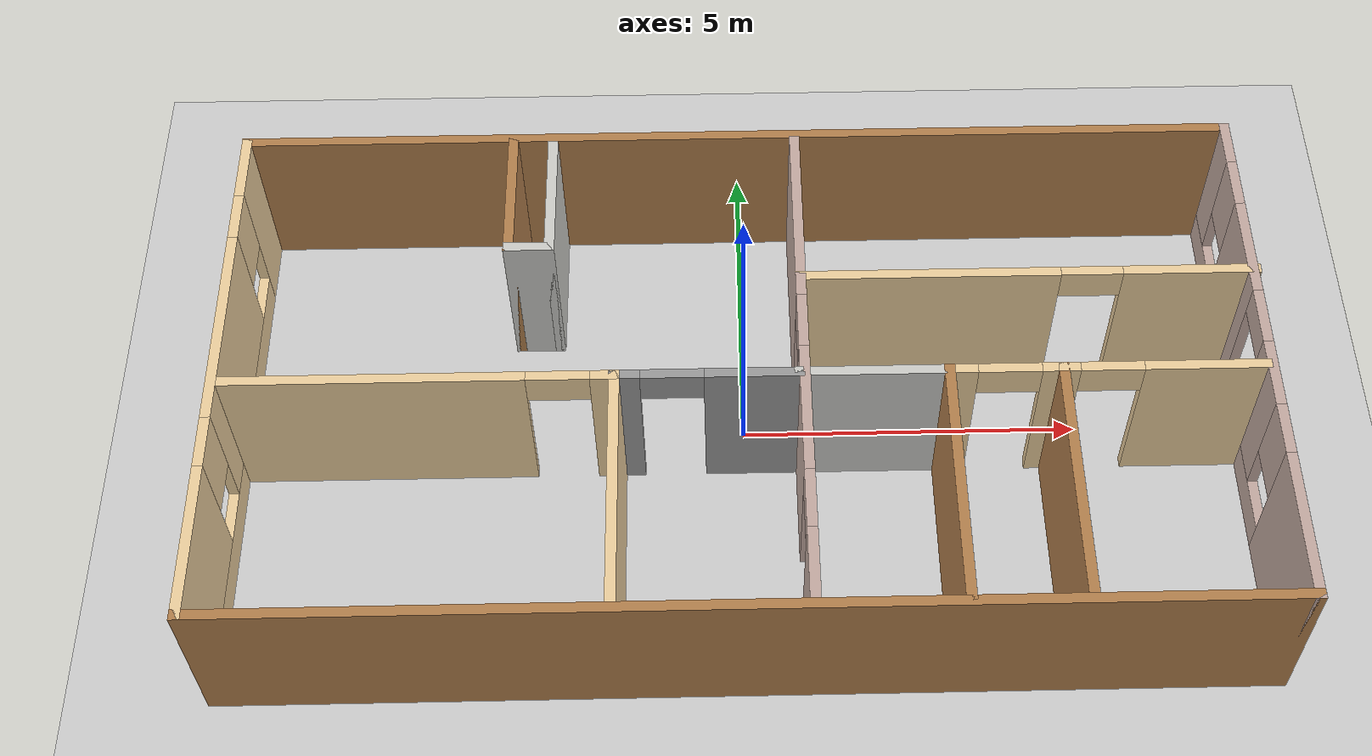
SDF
<sdf version="1.6">
 <world name="default">
  <model name="ground_plane">
   <static>1</static>
   <link name="link">
    <collision name="collision">
     <geometry><plane><normal>0 0 1</normal><size>100 100</size></plane></geometry>
     <surface>
      <contact><collide_bitmask>65535</collide_bitmask></contact>
      <friction><ode><mu>100</mu><mu2>50</mu2></ode></friction>
     </surface>
    </collision>
    <visual name="visual">
     <cast_shadows>0</cast_shadows>
     <geometry><plane><normal>0 0 1</normal><size>100 100</size></plane></geometry>
     <material>
      <script><uri>file://media/materials/scripts/gazebo.material</uri><name>Gazebo/Grey</name></script>
     </material>
    </visual>
   </link>
  </model>
  <model name="Building">
   <pose>0 -0.223279 0 0 -0 0</pose>
   <link name="Wall_10">
    <pose>-4.62797 -0.372796 0 0 -0 0</pose>
    <visual name="Wall_10_Visual_0">
     <pose>-0.658179 0 1.25 0 -0 0</pose>
     <geometry><box><size>4.43364 0.15 2.5</size></box></geometry>
     <material>
      <script><uri>file://media/materials/scripts/gazebo.material</uri><name>Gazebo/Grey</name></script>
      <ambient>0.921569 0.807843 0.615686 1</ambient>
     </material>
     <meta><layer>0</layer></meta>
    </visual>
    <collision name="Wall_10_Collision_0">
     <geometry><box><size>4.43364 0.15 2.5</size></box></geometry>
     <pose>-0.658179 0 1.25 0 -0 0</pose>
    </collision>
    <visual name="Wall_10_Visual_1">
     <pose>2.66682 0 1.25 0 -0 0</pose>
     <geometry><box><size>0.416358 0.15 2.5</size></box></geometry>
     <material>
      <script><uri>file://media/materials/scripts/gazebo.material</uri><name>Gazebo/Grey</name></script>
      <ambient>0.921569 0.807843 0.615686 1</ambient>
     </material>
     <meta><layer>0</layer></meta>
    </visual>
    <collision name="Wall_10_Collision_1">
     <geometry><box><size>0.416358 0.15 2.5</size></box></geometry>
     <pose>2.66682 0 1.25 0 -0 0</pose>
    </collision>
    <visual name="Wall_10_Visual_2">
     <pose>2.00864 0 2.25 0 -0 0</pose>
     <geometry><box><size>0.9 0.15 0.5</size></box></geometry>
     <material>
      <script><uri>file://media/materials/scripts/gazebo.material</uri><name>Gazebo/Grey</name></script>
      <ambient>0.921569 0.807843 0.615686 1</ambient>
     </material>
     <meta><layer>0</layer></meta>
    </visual>
    <collision name="Wall_10_Collision_2">
     <geometry><box><size>0.9 0.15 0.5</size></box></geometry>
     <pose>2.00864 0 2.25 0 -0 0</pose>
    </collision>
   </link>
   <link name="Wall_11">
    <collision name="Wall_11_Collision">
     <geometry><box><size>3.75 0.15 2.5</size></box></geometry>
     <pose>0 0 1.25 0 -0 0</pose>
    </collision>
    <visual name="Wall_11_Visual">
     <pose>0 0 1.25 0 -0 0</pose>
     <geometry><box><size>3.75 0.15 2.5</size></box></geometry>
     <material>
      <script><uri>file://media/materials/scripts/gazebo.material</uri><name>Gazebo/Grey</name></script>
      <ambient>0.921569 0.807843 0.615686 1</ambient>
     </material>
     <meta><layer>0</layer></meta>
    </visual>
    <pose>-1.82797 -2.1728 0 0 0 -1.5708</pose>
   </link>
   <link name="Wall_13">
    <collision name="Wall_13_Collision">
     <geometry><box><size>15 0.15 2.5</size></box></geometry>
     <pose>0 0 1.25 0 -0 0</pose>
    </collision>
    <visual name="Wall_13_Visual">
     <pose>0 0 1.25 0 -0 0</pose>
     <geometry><box><size>15 0.15 2.5</size></box></geometry>
     <material>
      <script><uri>file://media/materials/scripts/gazebo.material</uri><name>Gazebo/Wood</name></script>
      <ambient>1 1 1 1</ambient>
     </material>
     <meta><layer>0</layer></meta>
    </visual>
    <pose>-0.019546 4.05 0 0 -0 0</pose>
   </link>
   <link name="Wall_17">
    <pose>0.844548 -0.003816 0 0 0 -1.5708</pose>
    <visual name="Wall_17_Visual_0">
     <pose>-2.48974 0 1.25 0 -0 0</pose>
     <geometry><box><size>3.02052 0.15 2.5</size></box></geometry>
     <material>
      <script><uri>file://media/materials/scripts/gazebo.material</uri><name>Gazebo/Grey</name></script>
      <ambient>0.760784 0.662745 0.627451 1</ambient>
     </material>
     <meta><layer>0</layer></meta>
    </visual>
    <collision name="Wall_17_Collision_0">
     <geometry><box><size>3.02052 0.15 2.5</size></box></geometry>
     <pose>-2.48974 0 1.25 0 -0 0</pose>
    </collision>
    <visual name="Wall_17_Visual_1">
     <pose>0.954141 0 1.25 0 -0 0</pose>
     <geometry><box><size>2.06725 0.15 2.5</size></box></geometry>
     <material>
      <script><uri>file://media/materials/scripts/gazebo.material</uri><name>Gazebo/Grey</name></script>
      <ambient>0.760784 0.662745 0.627451 1</ambient>
     </material>
     <meta><layer>0</layer></meta>
    </visual>
    <collision name="Wall_17_Collision_1">
     <geometry><box><size>2.06725 0.15 2.5</size></box></geometry>
     <pose>0.954141 0 1.25 0 -0 0</pose>
    </collision>
    <visual name="Wall_17_Visual_2">
     <pose>3.44388 0 1.25 0 -0 0</pose>
     <geometry><box><size>1.11223 0.15 2.5</size></box></geometry>
     <material>
      <script><uri>file://media/materials/scripts/gazebo.material</uri><name>Gazebo/Grey</name></script>
      <ambient>0.760784 0.662745 0.627451 1</ambient>
     </material>
     <meta><layer>0</layer></meta>
    </visual>
    <collision name="Wall_17_Collision_2">
     <geometry><box><size>1.11223 0.15 2.5</size></box></geometry>
     <pose>3.44388 0 1.25 0 -0 0</pose>
    </collision>
    <visual name="Wall_17_Visual_3">
     <pose>-0.529485 0 2.25 0 -0 0</pose>
     <geometry><box><size>0.9 0.15 0.5</size></box></geometry>
     <material>
      <script><uri>file://media/materials/scripts/gazebo.material</uri><name>Gazebo/Grey</name></script>
      <ambient>0.760784 0.662745 0.627451 1</ambient>
     </material>
     <meta><layer>0</layer></meta>
    </visual>
    <collision name="Wall_17_Collision_3">
     <geometry><box><size>0.9 0.15 0.5</size></box></geometry>
     <pose>-0.529485 0 2.25 0 -0 0</pose>
    </collision>
    <visual name="Wall_17_Visual_4">
     <pose>2.43777 0 2.25 0 -0 0</pose>
     <geometry><box><size>0.9 0.15 0.5</size></box></geometry>
     <material>
      <script><uri>file://media/materials/scripts/gazebo.material</uri><name>Gazebo/Grey</name></script>
      <ambient>0.760784 0.662745 0.627451 1</ambient>
     </material>
     <meta><layer>0</layer></meta>
    </visual>
    <collision name="Wall_17_Collision_4">
     <geometry><box><size>0.9 0.15 0.5</size></box></geometry>
     <pose>2.43777 0 2.25 0 -0 0</pose>
    </collision>
   </link>
   <link name="Wall_19">
    <pose>-0.52797 -0.372796 0 0 -0 0</pose>
    <visual name="Wall_19_Visual_0">
     <pose>-1.15924 0 1.25 0 -0 0</pose>
     <geometry><box><size>0.431514 0.15 2.5</size></box></geometry>
     <material>
      <script><uri>file://media/materials/scripts/gazebo.material</uri><name>Gazebo/Grey</name></script>
      <ambient>1 1 1 1</ambient>
     </material>
     <meta><layer>0</layer></meta>
    </visual>
    <collision name="Wall_19_Collision_0">
     <geometry><box><size>0.431514 0.15 2.5</size></box></geometry>
     <pose>-1.15924 0 1.25 0 -0 0</pose>
    </collision>
    <visual name="Wall_19_Visual_1">
     <pose>0.665757 0 1.25 0 -0 0</pose>
     <geometry><box><size>1.41849 0.15 2.5</size></box></geometry>
     <material>
      <script><uri>file://media/materials/scripts/gazebo.material</uri><name>Gazebo/Grey</name></script>
      <ambient>1 1 1 1</ambient>
     </material>
     <meta><layer>0</layer></meta>
    </visual>
    <collision name="Wall_19_Collision_1">
     <geometry><box><size>1.41849 0.15 2.5</size></box></geometry>
     <pose>0.665757 0 1.25 0 -0 0</pose>
    </collision>
    <visual name="Wall_19_Visual_2">
     <pose>-0.493486 0 2.25 0 -0 0</pose>
     <geometry><box><size>0.9 0.15 0.5</size></box></geometry>
     <material>
      <script><uri>file://media/materials/scripts/gazebo.material</uri><name>Gazebo/Grey</name></script>
      <ambient>1 1 1 1</ambient>
     </material>
     <meta><layer>0</layer></meta>
    </visual>
    <collision name="Wall_19_Collision_2">
     <geometry><box><size>0.9 0.15 0.5</size></box></geometry>
     <pose>-0.493486 0 2.25 0 -0 0</pose>
    </collision>
   </link>
   <link name="Wall_23">
    <collision name="Wall_23_Collision">
     <geometry><box><size>2.25 0.15 2.5</size></box></geometry>
     <pose>0 0 1.25 0 -0 0</pose>
    </collision>
    <visual name="Wall_23_Visual">
     <pose>0 0 1.25 0 -0 0</pose>
     <geometry><box><size>2.25 0.15 2.5</size></box></geometry>
     <material>
      <script><uri>file://media/materials/scripts/gazebo.material</uri><name>Gazebo/Wood</name></script>
      <ambient>1 1 1 1</ambient>
     </material>
     <meta><layer>0</layer></meta>
    </visual>
    <pose>-3.40749 2.99355 0 0 0 -1.5708</pose>
   </link>
   <link name="Wall_24">
    <collision name="Wall_24_Collision">
     <geometry><box><size>0.75 0.15 2.5</size></box></geometry>
     <pose>0 0 1.25 0 -0 0</pose>
    </collision>
    <visual name="Wall_24_Visual">
     <pose>0 0 1.25 0 -0 0</pose>
     <geometry><box><size>0.75 0.15 2.5</size></box></geometry>
     <material>
      <script><uri>file://media/materials/scripts/gazebo.material</uri><name>Gazebo/CeilingTiled</name></script>
      <ambient>1 1 1 1</ambient>
     </material>
     <meta><layer>0</layer></meta>
    </visual>
    <pose>-3.10749 1.94355 0 0 -0 0</pose>
   </link>
   <link name="Wall_27">
    <collision name="Wall_27_Collision">
     <geometry><box><size>2.25 0.15 2.5</size></box></geometry>
     <pose>0 0 1.25 0 -0 0</pose>
    </collision>
    <visual name="Wall_27_Visual">
     <pose>0 0 1.25 0 -0 0</pose>
     <geometry><box><size>2.25 0.15 2.5</size></box></geometry>
     <material>
      <script><uri>file://media/materials/scripts/gazebo.material</uri><name>Gazebo/CeilingTiled</name></script>
      <ambient>1 1 1 1</ambient>
     </material>
     <meta><layer>0</layer></meta>
    </visual>
    <pose>-2.80749 2.99355 0 0 -0 1.5708</pose>
   </link>
   <link name="Wall_3">
    <pose>-7.44455 0 0 0 0 -1.5708</pose>
    <visual name="Wall_3_Visual_0">
     <pose>-3.5654 0 1.25 0 -0 0</pose>
     <geometry><box><size>1.1192 0.15 2.5</size></box></geometry>
     <material>
      <script><uri>file://media/materials/scripts/gazebo.material</uri><name>Gazebo/Grey</name></script>
      <ambient>0.921569 0.807843 0.615686 1</ambient>
     </material>
     <meta><layer>0</layer></meta>
    </visual>
    <collision name="Wall_3_Collision_0">
     <geometry><box><size>1.1192 0.15 2.5</size></box></geometry>
     <pose>-3.5654 0 1.25 0 -0 0</pose>
    </collision>
    <visual name="Wall_3_Visual_1">
     <pose>0.559598 0 0.25 0 -0 0</pose>
     <geometry><box><size>7.1308 0.15 0.5</size></box></geometry>
     <material>
      <script><uri>file://media/materials/scripts/gazebo.material</uri><name>Gazebo/Grey</name></script>
      <ambient>0.921569 0.807843 0.615686 1</ambient>
     </material>
     <meta><layer>0</layer></meta>
    </visual>
    <collision name="Wall_3_Collision_1">
     <geometry><box><size>7.1308 0.15 0.5</size></box></geometry>
     <pose>0.559598 0 0.25 0 -0 0</pose>
    </collision>
    <visual name="Wall_3_Visual_2">
     <pose>-0.61744 0 1.5 0 -0 0</pose>
     <geometry><box><size>3.17673 0.15 2</size></box></geometry>
     <material>
      <script><uri>file://media/materials/scripts/gazebo.material</uri><name>Gazebo/Grey</name></script>
      <ambient>0.921569 0.807843 0.615686 1</ambient>
     </material>
     <meta><layer>0</layer></meta>
    </visual>
    <collision name="Wall_3_Collision_2">
     <geometry><box><size>3.17673 0.15 2</size></box></geometry>
     <pose>-0.61744 0 1.5 0 -0 0</pose>
    </collision>
    <visual name="Wall_3_Visual_3">
     <pose>2.94796 0 1.5 0 -0 0</pose>
     <geometry><box><size>2.35407 0.15 2</size></box></geometry>
     <material>
      <script><uri>file://media/materials/scripts/gazebo.material</uri><name>Gazebo/Grey</name></script>
      <ambient>0.921569 0.807843 0.615686 1</ambient>
     </material>
     <meta><layer>0</layer></meta>
    </visual>
    <collision name="Wall_3_Collision_3">
     <geometry><box><size>2.35407 0.15 2</size></box></geometry>
     <pose>2.94796 0 1.5 0 -0 0</pose>
    </collision>
    <visual name="Wall_3_Visual_4">
     <pose>-2.6058 0 1.9 0 -0 0</pose>
     <geometry><box><size>0.8 0.15 1.2</size></box></geometry>
     <material>
      <script><uri>file://media/materials/scripts/gazebo.material</uri><name>Gazebo/Grey</name></script>
      <ambient>0.921569 0.807843 0.615686 1</ambient>
     </material>
     <meta><layer>0</layer></meta>
    </visual>
    <collision name="Wall_3_Collision_4">
     <geometry><box><size>0.8 0.15 1.2</size></box></geometry>
     <pose>-2.6058 0 1.9 0 -0 0</pose>
    </collision>
    <visual name="Wall_3_Visual_5">
     <pose>1.37092 0 1.9 0 -0 0</pose>
     <geometry><box><size>0.8 0.15 1.2</size></box></geometry>
     <material>
      <script><uri>file://media/materials/scripts/gazebo.material</uri><name>Gazebo/Grey</name></script>
      <ambient>0.921569 0.807843 0.615686 1</ambient>
     </material>
     <meta><layer>0</layer></meta>
    </visual>
    <collision name="Wall_3_Collision_5">
     <geometry><box><size>0.8 0.15 1.2</size></box></geometry>
     <pose>1.37092 0 1.9 0 -0 0</pose>
    </collision>
   </link>
   <link name="Wall_31">
    <pose>4.14455 1.32102 0 0 -0 0</pose>
    <visual name="Wall_31_Visual_0">
     <pose>-1.45177 0 1.25 0 -0 0</pose>
     <geometry><box><size>3.84645 0.15 2.5</size></box></geometry>
     <material>
      <script><uri>file://media/materials/scripts/gazebo.material</uri><name>Gazebo/Grey</name></script>
      <ambient>0.921569 0.807843 0.615686 1</ambient>
     </material>
     <meta><layer>0</layer></meta>
    </visual>
    <collision name="Wall_31_Collision_0">
     <geometry><box><size>3.84645 0.15 2.5</size></box></geometry>
     <pose>-1.45177 0 1.25 0 -0 0</pose>
    </collision>
    <visual name="Wall_31_Visual_1">
     <pose>2.37323 0 1.25 0 -0 0</pose>
     <geometry><box><size>2.00355 0.15 2.5</size></box></geometry>
     <material>
      <script><uri>file://media/materials/scripts/gazebo.material</uri><name>Gazebo/Grey</name></script>
      <ambient>0.921569 0.807843 0.615686 1</ambient>
     </material>
     <meta><layer>0</layer></meta>
    </visual>
    <collision name="Wall_31_Collision_1">
     <geometry><box><size>2.00355 0.15 2.5</size></box></geometry>
     <pose>2.37323 0 1.25 0 -0 0</pose>
    </collision>
    <visual name="Wall_31_Visual_2">
     <pose>0.921452 0 2.25 0 -0 0</pose>
     <geometry><box><size>0.9 0.15 0.5</size></box></geometry>
     <material>
      <script><uri>file://media/materials/scripts/gazebo.material</uri><name>Gazebo/Grey</name></script>
      <ambient>0.921569 0.807843 0.615686 1</ambient>
     </material>
     <meta><layer>0</layer></meta>
    </visual>
    <collision name="Wall_31_Collision_2">
     <geometry><box><size>0.9 0.15 0.5</size></box></geometry>
     <pose>0.921452 0 2.25 0 -0 0</pose>
    </collision>
   </link>
   <link name="Wall_33">
    <collision name="Wall_33_Collision">
     <geometry><box><size>2.25 0.15 2.5</size></box></geometry>
     <pose>0 0 1.25 0 -0 0</pose>
    </collision>
    <visual name="Wall_33_Visual">
     <pose>0 0 1.25 0 -0 0</pose>
     <geometry><box><size>2.25 0.15 2.5</size></box></geometry>
     <material>
      <script><uri>file://media/materials/scripts/gazebo.material</uri><name>Gazebo/CeilingTiled</name></script>
      <ambient>1 1 1 1</ambient>
     </material>
     <meta><layer>0</layer></meta>
    </visual>
    <pose>1.82203 -0.372796 0 0 -0 0</pose>
   </link>
   <link name="Wall_34">
    <collision name="Wall_34_Collision">
     <geometry><box><size>3.75 0.15 2.5</size></box></geometry>
     <pose>0 0 1.25 0 -0 0</pose>
    </collision>
    <visual name="Wall_34_Visual">
     <pose>0 0 1.25 0 -0 0</pose>
     <geometry><box><size>3.75 0.15 2.5</size></box></geometry>
     <material>
      <script><uri>file://media/materials/scripts/gazebo.material</uri><name>Gazebo/Wood</name></script>
      <ambient>1 1 1 1</ambient>
     </material>
     <meta><layer>0</layer></meta>
    </visual>
    <pose>2.87203 -2.1728 0 0 0 -1.5708</pose>
   </link>
   <link name="Wall_36">
    <pose>3.67203 -0.372796 0 0 -0 0</pose>
    <visual name="Wall_36_Visual_0">
     <pose>-0.6385 0 1.25 0 -0 0</pose>
     <geometry><box><size>0.472999 0.15 2.5</size></box></geometry>
     <material>
      <script><uri>file://media/materials/scripts/gazebo.material</uri><name>Gazebo/Grey</name></script>
      <ambient>0.921569 0.807843 0.615686 1</ambient>
     </material>
     <meta><layer>0</layer></meta>
    </visual>
    <collision name="Wall_36_Collision_0">
     <geometry><box><size>0.472999 0.15 2.5</size></box></geometry>
     <pose>-0.6385 0 1.25 0 -0 0</pose>
    </collision>
    <visual name="Wall_36_Visual_1">
     <pose>0.6865 0 1.25 0 -0 0</pose>
     <geometry><box><size>0.377001 0.15 2.5</size></box></geometry>
     <material>
      <script><uri>file://media/materials/scripts/gazebo.material</uri><name>Gazebo/Grey</name></script>
      <ambient>0.921569 0.807843 0.615686 1</ambient>
     </material>
     <meta><layer>0</layer></meta>
    </visual>
    <collision name="Wall_36_Collision_1">
     <geometry><box><size>0.377001 0.15 2.5</size></box></geometry>
     <pose>0.6865 0 1.25 0 -0 0</pose>
    </collision>
    <visual name="Wall_36_Visual_2">
     <pose>0.047999 0 2.25 0 -0 0</pose>
     <geometry><box><size>0.9 0.15 0.5</size></box></geometry>
     <material>
      <script><uri>file://media/materials/scripts/gazebo.material</uri><name>Gazebo/Grey</name></script>
      <ambient>0.921569 0.807843 0.615686 1</ambient>
     </material>
     <meta><layer>0</layer></meta>
    </visual>
    <collision name="Wall_36_Collision_2">
     <geometry><box><size>0.9 0.15 0.5</size></box></geometry>
     <pose>0.047999 0 2.25 0 -0 0</pose>
    </collision>
   </link>
   <link name="Wall_37">
    <collision name="Wall_37_Collision">
     <geometry><box><size>3.75 0.15 2.5</size></box></geometry>
     <pose>0 0 1.25 0 -0 0</pose>
    </collision>
    <visual name="Wall_37_Visual">
     <pose>0 0 1.25 0 -0 0</pose>
     <geometry><box><size>3.75 0.15 2.5</size></box></geometry>
     <material>
      <script><uri>file://media/materials/scripts/gazebo.material</uri><name>Gazebo/Wood</name></script>
      <ambient>1 1 1 1</ambient>
     </material>
     <meta><layer>0</layer></meta>
    </visual>
    <pose>4.47203 -2.1728 0 0 0 -1.5708</pose>
   </link>
   <link name="Wall_39">
    <pose>5.89703 -0.372796 0 0 -0 0</pose>
    <visual name="Wall_39_Visual_0">
     <pose>-1.34463 0 1.25 0 -0 0</pose>
     <geometry><box><size>0.31074 0.15 2.5</size></box></geometry>
     <material>
      <script><uri>file://media/materials/scripts/gazebo.material</uri><name>Gazebo/Grey</name></script>
      <ambient>0.921569 0.807843 0.615686 1</ambient>
     </material>
     <meta><layer>0</layer></meta>
    </visual>
    <collision name="Wall_39_Collision_0">
     <geometry><box><size>0.31074 0.15 2.5</size></box></geometry>
     <pose>-1.34463 0 1.25 0 -0 0</pose>
    </collision>
    <visual name="Wall_39_Visual_1">
     <pose>0.60537 0 1.25 0 -0 0</pose>
     <geometry><box><size>1.78926 0.15 2.5</size></box></geometry>
     <material>
      <script><uri>file://media/materials/scripts/gazebo.material</uri><name>Gazebo/Grey</name></script>
      <ambient>0.921569 0.807843 0.615686 1</ambient>
     </material>
     <meta><layer>0</layer></meta>
    </visual>
    <collision name="Wall_39_Collision_1">
     <geometry><box><size>1.78926 0.15 2.5</size></box></geometry>
     <pose>0.60537 0 1.25 0 -0 0</pose>
    </collision>
    <visual name="Wall_39_Visual_2">
     <pose>-0.73926 0 2.25 0 -0 0</pose>
     <geometry><box><size>0.9 0.15 0.5</size></box></geometry>
     <material>
      <script><uri>file://media/materials/scripts/gazebo.material</uri><name>Gazebo/Grey</name></script>
      <ambient>0.921569 0.807843 0.615686 1</ambient>
     </material>
     <meta><layer>0</layer></meta>
    </visual>
    <collision name="Wall_39_Collision_2">
     <geometry><box><size>0.9 0.15 0.5</size></box></geometry>
     <pose>-0.73926 0 2.25 0 -0 0</pose>
    </collision>
   </link>
   <link name="Wall_4">
    <collision name="Wall_4_Collision">
     <geometry><box><size>15 0.15 2.5</size></box></geometry>
     <pose>0 0 1.25 0 -0 0</pose>
    </collision>
    <visual name="Wall_4_Visual">
     <pose>0 0 1.25 0 -0 0</pose>
     <geometry><box><size>15 0.15 2.5</size></box></geometry>
     <material>
      <script><uri>file://media/materials/scripts/gazebo.material</uri><name>Gazebo/Wood</name></script>
      <ambient>1 1 1 1</ambient>
     </material>
     <meta><layer>0</layer></meta>
    </visual>
    <pose>-0.019546 -4.05 0 0 -0 0</pose>
   </link>
   <link name="Wall_5">
    <pose>7.40545 0 0 0 -0 1.5708</pose>
    <visual name="Wall_5_Visual_0">
     <pose>-2.99385 0 1.25 0 -0 0</pose>
     <geometry><box><size>2.2623 0.15 2.5</size></box></geometry>
     <material>
      <script><uri>file://media/materials/scripts/gazebo.material</uri><name>Gazebo/Grey</name></script>
      <ambient>0.760784 0.662745 0.627451 1</ambient>
     </material>
     <meta><layer>0</layer></meta>
    </visual>
    <collision name="Wall_5_Collision_0">
     <geometry><box><size>2.2623 0.15 2.5</size></box></geometry>
     <pose>-2.99385 0 1.25 0 -0 0</pose>
    </collision>
    <visual name="Wall_5_Visual_1">
     <pose>1.72839 0 1.25 0 -0 0</pose>
     <geometry><box><size>1.62781 0.15 2.5</size></box></geometry>
     <material>
      <script><uri>file://media/materials/scripts/gazebo.material</uri><name>Gazebo/Grey</name></script>
      <ambient>0.760784 0.662745 0.627451 1</ambient>
     </material>
     <meta><layer>0</layer></meta>
    </visual>
    <collision name="Wall_5_Collision_1">
     <geometry><box><size>1.62781 0.15 2.5</size></box></geometry>
     <pose>1.72839 0 1.25 0 -0 0</pose>
    </collision>
    <visual name="Wall_5_Visual_2">
     <pose>-0.924104 0 0.25 0 -0 0</pose>
     <geometry><box><size>1.87718 0.15 0.5</size></box></geometry>
     <material>
      <script><uri>file://media/materials/scripts/gazebo.material</uri><name>Gazebo/Grey</name></script>
      <ambient>0.760784 0.662745 0.627451 1</ambient>
     </material>
     <meta><layer>0</layer></meta>
    </visual>
    <collision name="Wall_5_Collision_2">
     <geometry><box><size>1.87718 0.15 0.5</size></box></geometry>
     <pose>-0.924104 0 0.25 0 -0 0</pose>
    </collision>
    <visual name="Wall_5_Visual_3">
     <pose>3.33365 0 0.25 0 -0 0</pose>
     <geometry><box><size>1.5827 0.15 0.5</size></box></geometry>
     <material>
      <script><uri>file://media/materials/scripts/gazebo.material</uri><name>Gazebo/Grey</name></script>
      <ambient>0.760784 0.662745 0.627451 1</ambient>
     </material>
     <meta><layer>0</layer></meta>
    </visual>
    <collision name="Wall_5_Collision_3">
     <geometry><box><size>1.5827 0.15 0.5</size></box></geometry>
     <pose>3.33365 0 0.25 0 -0 0</pose>
    </collision>
    <visual name="Wall_5_Visual_4">
     <pose>-0.524104 0 1.5 0 -0 0</pose>
     <geometry><box><size>1.07718 0.15 2</size></box></geometry>
     <material>
      <script><uri>file://media/materials/scripts/gazebo.material</uri><name>Gazebo/Grey</name></script>
      <ambient>0.760784 0.662745 0.627451 1</ambient>
     </material>
     <meta><layer>0</layer></meta>
    </visual>
    <collision name="Wall_5_Collision_4">
     <geometry><box><size>1.07718 0.15 2</size></box></geometry>
     <pose>-0.524104 0 1.5 0 -0 0</pose>
    </collision>
    <visual name="Wall_5_Visual_5">
     <pose>-0.524104 0 1.5 0 -0 0</pose>
     <geometry><box><size>1.07718 0.15 2</size></box></geometry>
     <material>
      <script><uri>file://media/materials/scripts/gazebo.material</uri><name>Gazebo/Grey</name></script>
      <ambient>0.760784 0.662745 0.627451 1</ambient>
     </material>
     <meta><layer>0</layer></meta>
    </visual>
    <collision name="Wall_5_Collision_5">
     <geometry><box><size>1.07718 0.15 2</size></box></geometry>
     <pose>-0.524104 0 1.5 0 -0 0</pose>
    </collision>
    <visual name="Wall_5_Visual_6">
     <pose>3.73365 0 1.5 0 -0 0</pose>
     <geometry><box><size>0.782703 0.15 2</size></box></geometry>
     <material>
      <script><uri>file://media/materials/scripts/gazebo.material</uri><name>Gazebo/Grey</name></script>
      <ambient>0.760784 0.662745 0.627451 1</ambient>
     </material>
     <meta><layer>0</layer></meta>
    </visual>
    <collision name="Wall_5_Collision_6">
     <geometry><box><size>0.782703 0.15 2</size></box></geometry>
     <pose>3.73365 0 1.5 0 -0 0</pose>
    </collision>
    <visual name="Wall_5_Visual_7">
     <pose>-1.4627 0 1.9 0 -0 0</pose>
     <geometry><box><size>0.8 0.15 1.2</size></box></geometry>
     <material>
      <script><uri>file://media/materials/scripts/gazebo.material</uri><name>Gazebo/Grey</name></script>
      <ambient>0.760784 0.662745 0.627451 1</ambient>
     </material>
     <meta><layer>0</layer></meta>
    </visual>
    <collision name="Wall_5_Collision_7">
     <geometry><box><size>0.8 0.15 1.2</size></box></geometry>
     <pose>-1.4627 0 1.9 0 -0 0</pose>
    </collision>
    <visual name="Wall_5_Visual_8">
     <pose>2.9423 0 1.9 0 -0 0</pose>
     <geometry><box><size>0.8 0.15 1.2</size></box></geometry>
     <material>
      <script><uri>file://media/materials/scripts/gazebo.material</uri><name>Gazebo/Grey</name></script>
      <ambient>0.760784 0.662745 0.627451 1</ambient>
     </material>
     <meta><layer>0</layer></meta>
    </visual>
    <collision name="Wall_5_Collision_8">
     <geometry><box><size>0.8 0.15 1.2</size></box></geometry>
     <pose>2.9423 0 1.9 0 -0 0</pose>
    </collision>
    <visual name="Wall_5_Visual_9">
     <pose>0.464488 0 2.25 0 -0 0</pose>
     <geometry><box><size>0.9 0.15 0.5</size></box></geometry>
     <material>
      <script><uri>file://media/materials/scripts/gazebo.material</uri><name>Gazebo/Grey</name></script>
      <ambient>0.760784 0.662745 0.627451 1</ambient>
     </material>
     <meta><layer>0</layer></meta>
    </visual>
    <collision name="Wall_5_Collision_9">
     <geometry><box><size>0.9 0.15 0.5</size></box></geometry>
     <pose>0.464488 0 2.25 0 -0 0</pose>
    </collision>
    <visual name="Wall_5_Visual_10">
     <pose>0.464488 0 2.25 0 -0 0</pose>
     <geometry><box><size>0.9 0.15 0.5</size></box></geometry>
     <material>
      <script><uri>file://media/materials/scripts/gazebo.material</uri><name>Gazebo/Grey</name></script>
      <ambient>0.760784 0.662745 0.627451 1</ambient>
     </material>
     <meta><layer>0</layer></meta>
    </visual>
    <collision name="Wall_5_Collision_10">
     <geometry><box><size>0.9 0.15 0.5</size></box></geometry>
     <pose>0.464488 0 2.25 0 -0 0</pose>
    </collision>
   </link>
   <static>1</static>
  </model>
  <model name="Rover_0">
   <link name="link_0">
    <pose>0.008 0 0 0 -0 0</pose>
    <inertial>
     <mass>1</mass>
     <inertia>
      <ixx>0.166667</ixx>
      <ixy>0</ixy>
      <ixz>0</ixz>
      <iyy>0.166667</iyy>
      <iyz>0</iyz>
      <izz>0.166667</izz>
     </inertia>
    </inertial>
    <visual name="visual">
     <geometry><box><size>0.6 0.4 0.1</size></box></geometry>
     <material>
      <lighting>1</lighting>
      <script><uri>file://media/materials/scripts/gazebo.material</uri><name>Gazebo/Grey</name></script>
      <shader type="pixel"><normal_map>__default__</normal_map></shader>
      <ambient>0.3 0.3 0.3 1</ambient>
      <diffuse>0.7 0.7 0.7 1</diffuse>
      <specular>0.01 0.01 0.01 1</specular>
      <emissive>0 0 0 1</emissive>
     </material>
    </visual>
    <collision name="collision">
     <geometry><box><size>0.6 0.4 0.1</size></box></geometry>
     <surface>
      <friction>
       <ode><mu>1</mu><mu2>1</mu2><fdir1>0 0 0</fdir1><slip1>0</slip1><slip2>0</slip2></ode>
       <torsional>
        <coefficient>1</coefficient>
        <patch_radius>0</patch_radius>
        <surface_radius>0</surface_radius>
        <use_patch_radius>1</use_patch_radius>
        <ode><slip>0</slip></ode>
       </torsional>
      </friction>
      <bounce><restitution_coefficient>0</restitution_coefficient><threshold>1e+06</threshold></bounce>
      <contact>
       <collide_without_contact>0</collide_without_contact>
       <collide_without_contact_bitmask>1</collide_without_contact_bitmask>
       <collide_bitmask>1</collide_bitmask>
       <ode>
        <soft_cfm>0</soft_cfm>
        <soft_erp>0.2</soft_erp>
        <kp>1e+13</kp>
        <kd>1</kd>
        <max_vel>0.01</max_vel>
        <min_depth>0</min_depth>
       </ode>
       <bullet>
        <split_impulse>1</split_impulse>
        <split_impulse_penetration_threshold>-0.01</split_impulse_penetration_threshold>
        <soft_cfm>0</soft_cfm>
        <soft_erp>0.2</soft_erp>
        <kp>1e+13</kp>
        <kd>1</kd>
       </bullet>
      </contact>
     </surface>
    </collision>
   </link>
   <link name="link_1">
    <pose>0.168 -0.225 0 1.5708 -0 0</pose>
    <inertial>
     <mass>1</mass>
     <inertia><ixx>0.145833</ixx><ixy>0</ixy><ixz>0</ixz><iyy>0.145833</iyy><iyz>0</iyz><izz>0.125</izz></inertia>
    </inertial>
    <visual name="visual">
     <geometry><cylinder><radius>0.1</radius><length>0.05</length></cylinder></geometry>
     <material>
      <lighting>1</lighting>
      <script><uri>file://media/materials/scripts/gazebo.material</uri><name>Gazebo/Grey</name></script>
      <shader type="pixel"><normal_map>__default__</normal_map></shader>
      <ambient>0.3 0.3 0.3 1</ambient>
      <diffuse>0.7 0.7 0.7 1</diffuse>
      <specular>0.01 0.01 0.01 1</specular>
      <emissive>0 0 0 1</emissive>
     </material>
    </visual>
    <collision name="collision">
     <geometry><cylinder><radius>0.1</radius><length>0.05</length></cylinder></geometry>
     <surface>
      <friction>
       <ode><mu>1</mu><mu2>1</mu2><fdir1>0 0 0</fdir1><slip1>0</slip1><slip2>0</slip2></ode>
       <torsional>
        <coefficient>1</coefficient>
        <patch_radius>0</patch_radius>
        <surface_radius>0</surface_radius>
        <use_patch_radius>1</use_patch_radius>
        <ode><slip>0</slip></ode>
       </torsional>
      </friction>
      <bounce><restitution_coefficient>0</restitution_coefficient><threshold>1e+06</threshold></bounce>
      <contact>
       <collide_without_contact>0</collide_without_contact>
       <collide_without_contact_bitmask>1</collide_without_contact_bitmask>
       <collide_bitmask>1</collide_bitmask>
       <ode>
        <soft_cfm>0</soft_cfm>
        <soft_erp>0.2</soft_erp>
        <kp>1e+13</kp>
        <kd>1</kd>
        <max_vel>0.01</max_vel>
        <min_depth>0</min_depth>
       </ode>
       <bullet>
        <split_impulse>1</split_impulse>
        <split_impulse_penetration_threshold>-0.01</split_impulse_penetration_threshold>
        <soft_cfm>0</soft_cfm>
        <soft_erp>0.2</soft_erp>
        <kp>1e+13</kp>
        <kd>1</kd>
       </bullet>
      </contact>
     </surface>
    </collision>
   </link>
   <link name="link_1_clone">
    <pose>-0.192 -0.225 0 1.5708 -0 0</pose>
    <inertial>
     <mass>1</mass>
     <inertia><ixx>0.145833</ixx><ixy>0</ixy><ixz>0</ixz><iyy>0.145833</iyy><iyz>0</iyz><izz>0.125</izz></inertia>
    </inertial>
    <visual name="visual">
     <geometry><cylinder><radius>0.1</radius><length>0.05</length></cylinder></geometry>
     <material>
      <lighting>1</lighting>
      <script><uri>file://media/materials/scripts/gazebo.material</uri><name>Gazebo/Grey</name></script>
      <shader type="pixel"><normal_map>__default__</normal_map></shader>
      <ambient>0.3 0.3 0.3 1</ambient>
      <diffuse>0.7 0.7 0.7 1</diffuse>
      <specular>0.01 0.01 0.01 1</specular>
      <emissive>0 0 0 1</emissive>
     </material>
    </visual>
    <collision name="collision">
     <geometry><cylinder><radius>0.1</radius><length>0.05</length></cylinder></geometry>
     <surface>
      <friction>
       <ode><mu>1</mu><mu2>1</mu2><fdir1>0 0 0</fdir1><slip1>0</slip1><slip2>0</slip2></ode>
       <torsional>
        <coefficient>1</coefficient>
        <patch_radius>0</patch_radius>
        <surface_radius>0</surface_radius>
        <use_patch_radius>1</use_patch_radius>
        <ode><slip>0</slip></ode>
       </torsional>
      </friction>
      <bounce><restitution_coefficient>0</restitution_coefficient><threshold>1e+06</threshold></bounce>
      <contact>
       <collide_without_contact>0</collide_without_contact>
       <collide_without_contact_bitmask>1</collide_without_contact_bitmask>
       <collide_bitmask>1</collide_bitmask>
       <ode>
        <soft_cfm>0</soft_cfm>
        <soft_erp>0.2</soft_erp>
        <kp>1e+13</kp>
        <kd>1</kd>
        <max_vel>0.01</max_vel>
        <min_depth>0</min_depth>
       </ode>
       <bullet>
        <split_impulse>1</split_impulse>
        <split_impulse_penetration_threshold>-0.01</split_impulse_penetration_threshold>
        <soft_cfm>0</soft_cfm>
        <soft_erp>0.2</soft_erp>
        <kp>1e+13</kp>
        <kd>1</kd>
       </bullet>
      </contact>
     </surface>
    </collision>
   </link>
   <link name="link_1_clone_0">
    <pose>-0.192 0.225 0 1.5708 -0 0</pose>
    <inertial>
     <mass>1</mass>
     <inertia><ixx>0.145833</ixx><ixy>0</ixy><ixz>0</ixz><iyy>0.145833</iyy><iyz>0</iyz><izz>0.125</izz></inertia>
    </inertial>
    <visual name="visual">
     <geometry><cylinder><radius>0.1</radius><length>0.05</length></cylinder></geometry>
     <material>
      <lighting>1</lighting>
      <script><uri>file://media/materials/scripts/gazebo.material</uri><name>Gazebo/Grey</name></script>
      <shader type="pixel"><normal_map>__default__</normal_map></shader>
      <ambient>0.3 0.3 0.3 1</ambient>
      <diffuse>0.7 0.7 0.7 1</diffuse>
      <specular>0.01 0.01 0.01 1</specular>
      <emissive>0 0 0 1</emissive>
     </material>
    </visual>
    <collision name="collision">
     <geometry><cylinder><radius>0.1</radius><length>0.05</length></cylinder></geometry>
     <surface>
      <friction>
       <ode><mu>1</mu><mu2>1</mu2><fdir1>0 0 0</fdir1><slip1>0</slip1><slip2>0</slip2></ode>
       <torsional>
        <coefficient>1</coefficient>
        <patch_radius>0</patch_radius>
        <surface_radius>0</surface_radius>
        <use_patch_radius>1</use_patch_radius>
        <ode><slip>0</slip></ode>
       </torsional>
      </friction>
      <bounce><restitution_coefficient>0</restitution_coefficient><threshold>1e+06</threshold></bounce>
      <contact>
       <collide_without_contact>0</collide_without_contact>
       <collide_without_contact_bitmask>1</collide_without_contact_bitmask>
       <collide_bitmask>1</collide_bitmask>
       <ode>
        <soft_cfm>0</soft_cfm>
        <soft_erp>0.2</soft_erp>
        <kp>1e+13</kp>
        <kd>1</kd>
        <max_vel>0.01</max_vel>
        <min_depth>0</min_depth>
       </ode>
       <bullet>
        <split_impulse>1</split_impulse>
        <split_impulse_penetration_threshold>-0.01</split_impulse_penetration_threshold>
        <soft_cfm>0</soft_cfm>
        <soft_erp>0.2</soft_erp>
        <kp>1e+13</kp>
        <kd>1</kd>
       </bullet>
      </contact>
     </surface>
    </collision>
   </link>
   <link name="link_1_clone_1">
    <pose>0.208 0.225 0 1.5708 -0 0</pose>
    <inertial>
     <mass>1</mass>
     <inertia><ixx>0.145833</ixx><ixy>0</ixy><ixz>0</ixz><iyy>0.145833</iyy><iyz>0</iyz><izz>0.125</izz></inertia>
    </inertial>
    <visual name="visual">
     <geometry><cylinder><radius>0.1</radius><length>0.05</length></cylinder></geometry>
     <material>
      <lighting>1</lighting>
      <script><uri>file://media/materials/scripts/gazebo.material</uri><name>Gazebo/Grey</name></script>
      <shader type="pixel"><normal_map>__default__</normal_map></shader>
      <ambient>0.3 0.3 0.3 1</ambient>
      <diffuse>0.7 0.7 0.7 1</diffuse>
      <specular>0.01 0.01 0.01 1</specular>
      <emissive>0 0 0 1</emissive>
     </material>
    </visual>
    <collision name="collision">
     <geometry><cylinder><radius>0.1</radius><length>0.05</length></cylinder></geometry>
     <surface>
      <friction>
       <ode><mu>1</mu><mu2>1</mu2><fdir1>0 0 0</fdir1><slip1>0</slip1><slip2>0</slip2></ode>
       <torsional>
        <coefficient>1</coefficient>
        <patch_radius>0</patch_radius>
        <surface_radius>0</surface_radius>
        <use_patch_radius>1</use_patch_radius>
        <ode><slip>0</slip></ode>
       </torsional>
      </friction>
      <bounce><restitution_coefficient>0</restitution_coefficient><threshold>1e+06</threshold></bounce>
      <contact>
       <collide_without_contact>0</collide_without_contact>
       <collide_without_contact_bitmask>1</collide_without_contact_bitmask>
       <collide_bitmask>1</collide_bitmask>
       <ode>
        <soft_cfm>0</soft_cfm>
        <soft_erp>0.2</soft_erp>
        <kp>1e+13</kp>
        <kd>1</kd>
        <max_vel>0.01</max_vel>
        <min_depth>0</min_depth>
       </ode>
       <bullet>
        <split_impulse>1</split_impulse>
        <split_impulse_penetration_threshold>-0.01</split_impulse_penetration_threshold>
        <soft_cfm>0</soft_cfm>
        <soft_erp>0.2</soft_erp>
        <kp>1e+13</kp>
        <kd>1</kd>
       </bullet>
      </contact>
     </surface>
    </collision>
   </link>
   <joint name="link_0_JOINT_0" type="revolute">
    <parent>link_0</parent>
    <child>link_1</child>
    <axis>
     <xyz>0 0 1</xyz>
     <use_parent_model_frame>0</use_parent_model_frame>
     <limit>
      <lower>-1.79769e+308</lower>
      <upper>1.79769e+308</upper>
      <effort>-1</effort>
      <velocity>-1</velocity>
     </limit>
     <dynamics>
      <spring_reference>0</spring_reference>
      <spring_stiffness>0</spring_stiffness>
      <damping>0</damping>
     </dynamics>
    </axis>
    <physics>
     <ode><limit><cfm>0</cfm><erp>0.2</erp></limit><suspension><cfm>0</cfm><erp>0.2</erp></suspension></ode>
    </physics>
   </joint>
   <joint name="link_0_JOINT_1" type="revolute">
    <parent>link_0</parent>
    <child>link_1_clone</child>
    <axis>
     <xyz>0 0 1</xyz>
     <use_parent_model_frame>0</use_parent_model_frame>
     <limit>
      <lower>-1.79769e+308</lower>
      <upper>1.79769e+308</upper>
      <effort>-1</effort>
      <velocity>-1</velocity>
     </limit>
     <dynamics>
      <spring_reference>0</spring_reference>
      <spring_stiffness>0</spring_stiffness>
      <damping>0</damping>
     </dynamics>
    </axis>
    <physics>
     <ode><limit><cfm>0</cfm><erp>0.2</erp></limit><suspension><cfm>0</cfm><erp>0.2</erp></suspension></ode>
    </physics>
   </joint>
   <joint name="link_0_JOINT_2" type="revolute">
    <parent>link_0</parent>
    <child>link_1_clone_1</child>
    <axis>
     <xyz>0 0 1</xyz>
     <use_parent_model_frame>0</use_parent_model_frame>
     <limit>
      <lower>-1.79769e+308</lower>
      <upper>1.79769e+308</upper>
      <effort>-1</effort>
      <velocity>-1</velocity>
     </limit>
     <dynamics>
      <spring_reference>0</spring_reference>
      <spring_stiffness>0</spring_stiffness>
      <damping>0</damping>
     </dynamics>
    </axis>
    <physics>
     <ode><limit><cfm>0</cfm><erp>0.2</erp></limit><suspension><cfm>0</cfm><erp>0.2</erp></suspension></ode>
    </physics>
   </joint>
   <joint name="link_0_JOINT_3" type="revolute">
    <parent>link_0</parent>
    <child>link_1_clone_0</child>
    <axis>
     <xyz>0 0 1</xyz>
     <use_parent_model_frame>0</use_parent_model_frame>
     <limit>
      <lower>-1.79769e+308</lower>
      <upper>1.79769e+308</upper>
      <effort>-1</effort>
      <velocity>-1</velocity>
     </limit>
     <dynamics>
      <spring_reference>0</spring_reference>
      <spring_stiffness>0</spring_stiffness>
      <damping>0</damping>
     </dynamics>
    </axis>
    <physics>
     <ode><limit><cfm>0</cfm><erp>0.2</erp></limit><suspension><cfm>0</cfm><erp>0.2</erp></suspension></ode>
    </physics>
   </joint>
   <static>0</static>
   <pose>2.66633 0.363746 0.1 -1e-06 0 -0.014846</pose>
  </model>
 </world>
</sdf>
